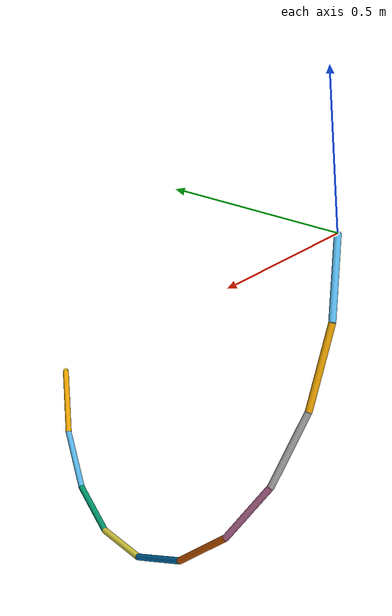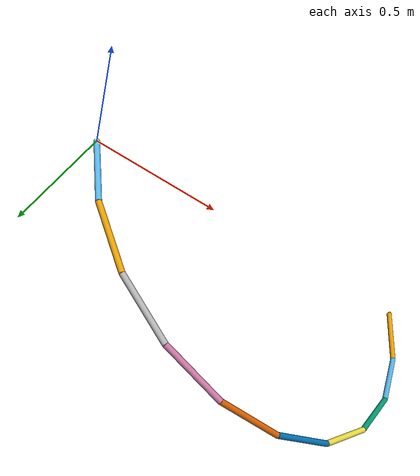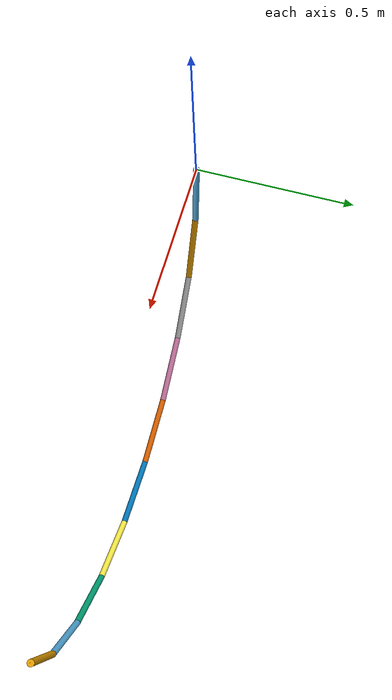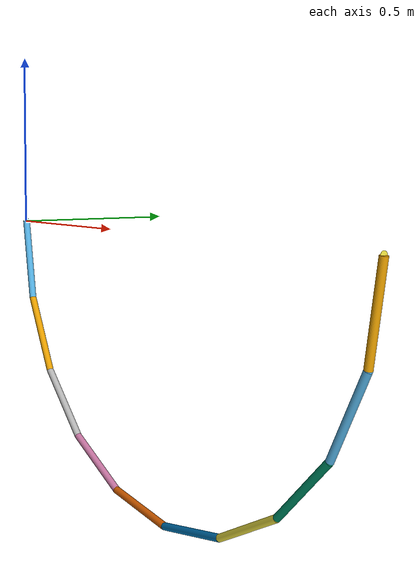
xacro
<?xml version="1.0" ?>
<robot name="tether_2m" xmlns:xacro="http://ros.org/wiki/xacro">
    <!-- Xacro to generate tether SDF -->

    <!-- Define properties -->
    <xacro:property name="dist_connect_points" value="1.521" />
    <xacro:property name="tether_radius" value="0.01" />
    <xacro:property name="tether_mass" value="0.02" />
    <xacro:property name="num_elements" value="10" />

    <xacro:property name="elem_length_ends" value="0.0001" />
    <xacro:property name="elem_mass_main" value="${tether_mass/num_elements}" />
    <xacro:property name="elem_mass_ends" value="0.0001" />

    <xacro:property name="joint_friction" value="0" />
    <xacro:property name="joint_damping" value="0.01" />

    <!-- Calculations -->
    <xacro:property name="ang_e" value="${pi/num_elements}"/>
    <xacro:property name="ang_i" value="${pi - ang_e}"/>
    <xacro:property name="elem_length_main" value="${(((dist_connect_points**2)/2)*(1-cos(ang_e)))**0.5}"/>

    <!-- Define link macro -->
    <xacro:macro name="tether_element" params="elem_name elem_length elem_mass">
        <link name="${elem_name}">
            <inertial>
                <origin xyz="${elem_length/2} 0 0" rpy="0 ${pi/2} 0" />
                <mass value="${elem_mass}"/>
                <inertia ixx="${1/12*elem_mass*(3*tether_radius**2 + elem_length**2)}" ixy="0" ixz="0" iyy="${1/12*elem_mass*(3*tether_radius**2 + elem_length**2)}" iyz="0" izz="${1/2*elem_mass*(tether_radius**2)}" />
            </inertial>
            <visual>
                <origin xyz="${elem_length/2} 0 0" rpy="0 ${pi/2} 0" />
                <geometry>
                    <cylinder length="${elem_length}" radius="${tether_radius}"/>
                </geometry>
            </visual>
        </link>
    </xacro:macro>

    <!-- Recursive loop to generate multiple elements and joints for said elements -->
    <xacro:macro name="generate_tether" params="elem_num">
        <!-- Generate elements and recurse-->
        <xacro:tether_element elem_name="element_${elem_num}" elem_length="${elem_length_main}" elem_mass="${elem_mass_main}" />

        <xacro:if value="${elem_num-1}">
            <xacro:generate_tether elem_num="${elem_num-1}" />
        </xacro:if>

        <!-- Define joints -->
        <xacro:if value="${elem_num-1 > 0}">
            <joint name="joint_${elem_num-1}_to_${elem_num}" type="continuous">
                <axis xyz="0. 1. 0."/>

                <origin xyz="${elem_length_main} 0 0" rpy="0 ${-ang_e} 0"/>

                <parent link="element_${elem_num-1}"/>
                <child link="element_${elem_num}"/>

                <dynamics damping="${joint_damping}" friction="${joint_friction}"/>
            </joint>

        </xacro:if>

    </xacro:macro>

    <!-- Call recursive loop to generate tether -->
    <xacro:generate_tether elem_num="${num_elements}" />

    <!-- Add start and end elements and joints-->
    <xacro:tether_element elem_name="element_first" elem_length="${elem_length_ends}" elem_mass="${elem_mass_ends}" />
    <xacro:tether_element elem_name="element_last" elem_length="${elem_length_ends}" elem_mass="${elem_mass_ends}" />

    <joint name="joint_0_to_1" type="continuous">
        <axis xyz="0. 1. 0."/>
        <origin xyz="${elem_length_ends} 0 0" rpy="0 ${ang_i/2} 0"/>
        <parent link="element_first"/>
        <child link="element_1"/>
        <dynamics damping="${joint_damping}" friction="${joint_friction}"/>
    </joint>
    <joint name="joint_${num_elements}_to_${num_elements+1}" type="continuous">
        <axis xyz="0. 1. 0."/>
        <origin xyz="${elem_length_main} 0 0" rpy="0 ${(pi-ang_e)/2} 0"/>
        <parent link="element_${num_elements}"/>
        <child link="element_last"/>
        <dynamics damping="${joint_damping}" friction="${joint_friction}"/>
    </joint>

</robot>
